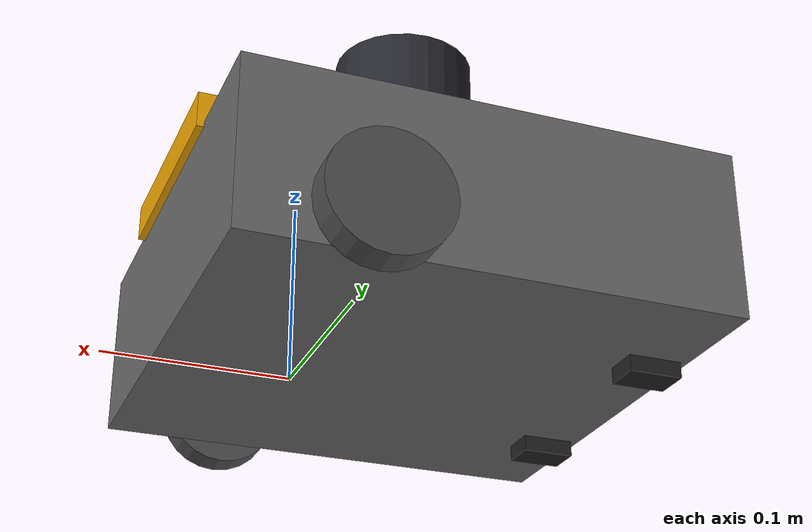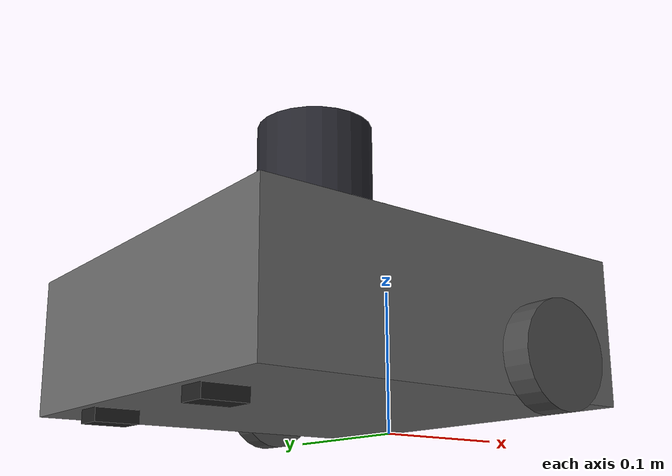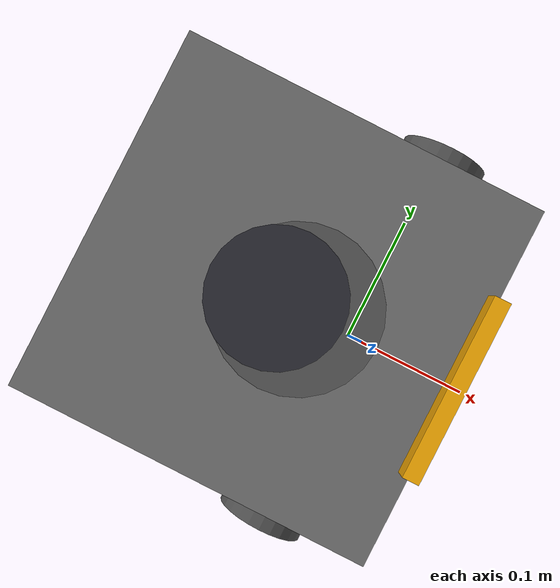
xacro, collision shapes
<?xml version="1.0"?>
<robot name="turtlebot3_ouster" xmlns:xacro="http://www.ros.org/wiki/xacro">

  <xacro:arg name="metadata_lidar0" default="metadata/os1_64_rev7.json"/>
  <xacro:arg name="hardware_revision" default="rev07"/>
  <!-- raycast (default, GPU-free) | panels (GpuRays, needs a rendering world) -->
  <xacro:arg name="ray_mode" default="raycast"/>
  <xacro:property name="ray_mode" value="$(arg ray_mode)"/>
  <!-- raycast needs only a pose anchor (non-rendering altimeter); panels needs a
       rendering anchor (camera) to bootstrap the ogre2 scene. -->
  <xacro:property name="anchor_type"
    value="${'altimeter' if ray_mode == 'raycast' else 'camera'}"/>

  <!-- TurtleBot3 waffle body (description only; namespace left empty). -->
  <xacro:include filename="$(find turtlebot3_description)/urdf/turtlebot3_waffle.urdf"/>

  <!-- Ouster mount macro. -->
  <xacro:include filename="ouster_macro.xacro"/>

  <!-- The Ouster, sat above the waffle's top plate (base_scan is at z=0.122). -->
  <xacro:ouster_sensor
    name="lidar0"
    parent="base_link"
    xyz="-0.064 0 0.16" rpy="0 0 0"
    metadata_path="$(arg metadata_lidar0)"
    hardware_revision="$(arg hardware_revision)"
    lidar_hz="10.0"
    enable_imu="true" imu_hz="100.0"
    ray_mode="${ray_mode}"
    anchor_type="${anchor_type}"/>

  <gazebo>
    <plugin filename="gz-sim-diff-drive-system"
            name="gz::sim::systems::DiffDrive">
      <left_joint>wheel_left_joint</left_joint>
      <right_joint>wheel_right_joint</right_joint>
      <wheel_separation>0.287</wheel_separation>
      <wheel_radius>0.033</wheel_radius>
      <max_linear_acceleration>1.0</max_linear_acceleration>
      <topic>cmd_vel</topic>
      <odom_topic>odom</odom_topic>
      <frame_id>odom</frame_id>
      <child_frame_id>base_footprint</child_frame_id>
      <odom_publish_frequency>30</odom_publish_frequency>
      <tf_topic>/tf</tf_topic>
    </plugin>

    <!-- Publish wheel joint angles so robot_state_publisher can spin the wheels
         in RViz (bridged to ROS /joint_states by the launch). -->
    <plugin filename="gz-sim-joint-state-publisher-system"
            name="gz::sim::systems::JointStatePublisher">
      <topic>joint_states</topic>
      <joint_name>wheel_left_joint</joint_name>
      <joint_name>wheel_right_joint</joint_name>
    </plugin>
  </gazebo>

</robot>

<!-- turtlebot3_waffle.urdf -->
<!-- |    This document was autogenerated by xacro from urdf/turtlebot3_waffle.urdf.xacro | -->
<!-- |    EDITING THIS FILE BY HAND IS NOT RECOMMENDED                                 | -->
<robot name="turtlebot3_waffle">
  <!-- Init colour -->
  <material name="black">
    <color rgba="0.0 0.0 0.0 1.0"/>
  </material>
  <material name="dark">
    <color rgba="0.3 0.3 0.3 1.0"/>
  </material>
  <material name="light_black">
    <color rgba="0.4 0.4 0.4 1.0"/>
  </material>
  <material name="blue">
    <color rgba="0.0 0.0 0.8 1.0"/>
  </material>
  <material name="green">
    <color rgba="0.0 0.8 0.0 1.0"/>
  </material>
  <material name="grey">
    <color rgba="0.5 0.5 0.5 1.0"/>
  </material>
  <material name="orange">
    <color rgba="1.0 0.4235294117647059 0.0392156862745098 1.0"/>
  </material>
  <material name="brown">
    <color rgba="0.8705882352941177 0.8117647058823529 0.7647058823529411 1.0"/>
  </material>
  <material name="red">
    <color rgba="0.8 0.0 0.0 1.0"/>
  </material>
  <material name="white">
    <color rgba="1.0 1.0 1.0 1.0"/>
  </material>
  <gazebo reference="base_link">
    <material>Gazebo/DarkGrey</material>
  </gazebo>
  <gazebo reference="wheel_left_link">
    <mu1>0.1</mu1>
    <mu2>0.1</mu2>
    <kp>500000.0</kp>
    <kd>10.0</kd>
    <minDepth>0.001</minDepth>
    <maxVel>0.1</maxVel>
    <fdir1>1 0 0</fdir1>
    <material>Gazebo/FlatBlack</material>
  </gazebo>
  <gazebo reference="wheel_right_link">
    <mu1>0.1</mu1>
    <mu2>0.1</mu2>
    <kp>500000.0</kp>
    <kd>10.0</kd>
    <minDepth>0.001</minDepth>
    <maxVel>0.1</maxVel>
    <fdir1>1 0 0</fdir1>
    <material>Gazebo/FlatBlack</material>
  </gazebo>
  <gazebo reference="caster_back_right_link">
    <mu1>0.1</mu1>
    <mu2>0.1</mu2>
    <kp>1000000.0</kp>
    <kd>100.0</kd>
    <minDepth>0.001</minDepth>
    <maxVel>1.0</maxVel>
    <material>Gazebo/FlatBlack</material>
  </gazebo>
  <gazebo reference="caster_back_left_link">
    <mu1>0.1</mu1>
    <mu2>0.1</mu2>
    <kp>1000000.0</kp>
    <kd>100.0</kd>
    <minDepth>0.001</minDepth>
    <maxVel>1.0</maxVel>
    <material>Gazebo/FlatBlack</material>
  </gazebo>
  <gazebo reference="imu_link">
    <sensor name="imu" type="imu">
      <always_on>true</always_on>
      <visualize>false</visualize>
    </sensor>
    <material>Gazebo/Grey</material>
  </gazebo>
  <gazebo>
    <plugin filename="libgazebo_ros_diff_drive.so" name="turtlebot3_waffle_controller">
      <commandTopic>cmd_vel</commandTopic>
      <odometryTopic>odom</odometryTopic>
      <odometryFrame>odom</odometryFrame>
      <odometrySource>world</odometrySource>
      <publishOdomTF>true</publishOdomTF>
      <robotBaseFrame>base_footprint</robotBaseFrame>
      <publishWheelTF>false</publishWheelTF>
      <publishTf>true</publishTf>
      <publishWheelJointState>true</publishWheelJointState>
      <legacyMode>false</legacyMode>
      <updateRate>30</updateRate>
      <leftJoint>wheel_left_joint</leftJoint>
      <rightJoint>wheel_right_joint</rightJoint>
      <wheelSeparation>0.287</wheelSeparation>
      <wheelDiameter>0.066</wheelDiameter>
      <wheelAcceleration>1</wheelAcceleration>
      <wheelTorque>10</wheelTorque>
      <rosDebugLevel>na</rosDebugLevel>
    </plugin>
  </gazebo>
  <gazebo>
    <plugin filename="libgazebo_ros_imu.so" name="imu_plugin">
      <alwaysOn>true</alwaysOn>
      <bodyName>imu_link</bodyName>
      <frameName>imu_link</frameName>
      <topicName>imu</topicName>
      <serviceName>imu_service</serviceName>
      <gaussianNoise>0.0</gaussianNoise>
      <updateRate>0</updateRate>
      <imu>
        <noise>
          <type>gaussian</type>
          <rate>
            <mean>0.0</mean>
            <stddev>2e-4</stddev>
            <bias_mean>0.0000075</bias_mean>
            <bias_stddev>0.0000008</bias_stddev>
          </rate>
          <accel>
            <mean>0.0</mean>
            <stddev>1.7e-2</stddev>
            <bias_mean>0.1</bias_mean>
            <bias_stddev>0.001</bias_stddev>
          </accel>
        </noise>
      </imu>
    </plugin>
  </gazebo>
  <gazebo reference="base_scan">
    <material>Gazebo/FlatBlack</material>
    <sensor name="lds_lfcd_sensor" type="ray">
      <pose>0 0 0 0 0 0</pose>
      <visualize>false</visualize>
      <update_rate>5</update_rate>
      <ray>
        <scan>
          <horizontal>
            <samples>360</samples>
            <resolution>1</resolution>
            <min_angle>0.0</min_angle>
            <max_angle>6.28319</max_angle>
          </horizontal>
        </scan>
        <range>
          <min>0.120</min>
          <max>3.5</max>
          <resolution>0.015</resolution>
        </range>
        <noise>
          <type>gaussian</type>
          <mean>0.0</mean>
          <stddev>0.01</stddev>
        </noise>
      </ray>
      <plugin filename="libgazebo_ros_laser.so" name="gazebo_ros_lds_lfcd_controller">
        <topicName>scan</topicName>
        <frameName>base_scan</frameName>
      </plugin>
    </sensor>
  </gazebo>
  <gazebo reference="camera_rgb_frame">
    <sensor name="realsense_R200" type="depth">
      <always_on>true</always_on>
      <visualize>false</visualize>
      <camera>
        <horizontal_fov>1.3439</horizontal_fov>
        <image>
          <width>1920</width>
          <height>1080</height>
          <format>R8G8B8</format>
        </image>
        <depth_camera/>
        <clip>
          <near>0.03</near>
          <far>100</far>
        </clip>
      </camera>
      <plugin filename="libgazebo_ros_openni_kinect.so" name="camera_controller">
        <baseline>0.2</baseline>
        <alwaysOn>true</alwaysOn>
        <updateRate>30.0</updateRate>
        <cameraName>camera</cameraName>
        <frameName>camera_rgb_optical_frame</frameName>
        <imageTopicName>rgb/image_raw</imageTopicName>
        <depthImageTopicName>depth/image_raw</depthImageTopicName>
        <pointCloudTopicName>depth/points</pointCloudTopicName>
        <cameraInfoTopicName>rgb/camera_info</cameraInfoTopicName>
        <depthImageCameraInfoTopicName>depth/camera_info</depthImageCameraInfoTopicName>
        <pointCloudCutoff>0.4</pointCloudCutoff>
        <hackBaseline>0.07</hackBaseline>
        <distortionK1>0.0</distortionK1>
        <distortionK2>0.0</distortionK2>
        <distortionK3>0.0</distortionK3>
        <distortionT1>0.0</distortionT1>
        <distortionT2>0.0</distortionT2>
        <CxPrime>0.0</CxPrime>
        <Cx>0.0</Cx>
        <Cy>0.0</Cy>
        <focalLength>0</focalLength>
        <hackBaseline>0</hackBaseline>
      </plugin>
    </sensor>
  </gazebo>
  <link name="base_footprint"/>
  <joint name="base_joint" type="fixed">
    <parent link="base_footprint"/>
    <child link="base_link"/>
    <origin rpy="0 0 0" xyz="0 0 0.010"/>
  </joint>
  <link name="base_link">
    <visual>
      <origin rpy="0 0 0" xyz="-0.064 0 0.0"/>
      <geometry>
        <mesh filename="package://turtlebot3_description/meshes/bases/waffle_base.stl" scale="0.001 0.001 0.001"/>
      </geometry>
      <material name="light_black"/>
    </visual>
    <collision>
      <origin rpy="0 0 0" xyz="-0.064 0 0.047"/>
      <geometry>
        <box size="0.266 0.266 0.094"/>
      </geometry>
    </collision>
    <inertial>
      <origin rpy="0 0 0" xyz="0 0 0"/>
      <mass value="1.3729096e+00"/>
      <inertia ixx="8.7002718e-03" ixy="-4.7576583e-05" ixz="1.1160499e-04" iyy="8.6195418e-03" iyz="-3.5422299e-06" izz="1.4612727e-02"/>
    </inertial>
  </link>
  <joint name="wheel_left_joint" type="continuous">
    <parent link="base_link"/>
    <child link="wheel_left_link"/>
    <origin rpy="-1.57 0 0" xyz="0.0 0.144 0.023"/>
    <axis xyz="0 0 1"/>
  </joint>
  <link name="wheel_left_link">
    <visual>
      <origin rpy="1.57 0 0" xyz="0 0 0"/>
      <geometry>
        <mesh filename="package://turtlebot3_description/meshes/wheels/left_tire.stl" scale="0.001 0.001 0.001"/>
      </geometry>
      <material name="dark"/>
    </visual>
    <collision>
      <origin rpy="0 0 0" xyz="0 0 0"/>
      <geometry>
        <cylinder length="0.018" radius="0.033"/>
      </geometry>
    </collision>
    <inertial>
      <origin xyz="0 0 0"/>
      <mass value="2.8498940e-02"/>
      <inertia ixx="1.1175580e-05" ixy="-4.2369783e-11" ixz="-5.9381719e-09" iyy="1.1192413e-05" iyz="-1.4400107e-11" izz="2.0712558e-05"/>
    </inertial>
  </link>
  <joint name="wheel_right_joint" type="continuous">
    <parent link="base_link"/>
    <child link="wheel_right_link"/>
    <origin rpy="-1.57 0 0" xyz="0.0 -0.144 0.023"/>
    <axis xyz="0 0 1"/>
  </joint>
  <link name="wheel_right_link">
    <visual>
      <origin rpy="1.57 0 0" xyz="0 0 0"/>
      <geometry>
        <mesh filename="package://turtlebot3_description/meshes/wheels/right_tire.stl" scale="0.001 0.001 0.001"/>
      </geometry>
      <material name="dark"/>
    </visual>
    <collision>
      <origin rpy="0 0 0" xyz="0 0 0"/>
      <geometry>
        <cylinder length="0.018" radius="0.033"/>
      </geometry>
    </collision>
    <inertial>
      <origin xyz="0 0 0"/>
      <mass value="2.8498940e-02"/>
      <inertia ixx="1.1175580e-05" ixy="-4.2369783e-11" ixz="-5.9381719e-09" iyy="1.1192413e-05" iyz="-1.4400107e-11" izz="2.0712558e-05"/>
    </inertial>
  </link>
  <joint name="caster_back_right_joint" type="fixed">
    <parent link="base_link"/>
    <child link="caster_back_right_link"/>
    <origin rpy="-1.57 0 0" xyz="-0.177 -0.064 -0.004"/>
  </joint>
  <link name="caster_back_right_link">
    <collision>
      <origin rpy="0 0 0" xyz="0 0.001 0"/>
      <geometry>
        <box size="0.030 0.009 0.020"/>
      </geometry>
    </collision>
    <inertial>
      <origin xyz="0 0 0"/>
      <mass value="0.005"/>
      <inertia ixx="0.001" ixy="0.0" ixz="0.0" iyy="0.001" iyz="0.0" izz="0.001"/>
    </inertial>
  </link>
  <joint name="caster_back_left_joint" type="fixed">
    <parent link="base_link"/>
    <child link="caster_back_left_link"/>
    <origin rpy="-1.57 0 0" xyz="-0.177 0.064 -0.004"/>
  </joint>
  <link name="caster_back_left_link">
    <collision>
      <origin rpy="0 0 0" xyz="0 0.001 0"/>
      <geometry>
        <box size="0.030 0.009 0.020"/>
      </geometry>
    </collision>
    <inertial>
      <origin xyz="0 0 0"/>
      <mass value="0.005"/>
      <inertia ixx="0.001" ixy="0.0" ixz="0.0" iyy="0.001" iyz="0.0" izz="0.001"/>
    </inertial>
  </link>
  <joint name="imu_joint" type="fixed">
    <parent link="base_link"/>
    <child link="imu_link"/>
    <origin rpy="0 0 0" xyz="0.0 0 0.068"/>
  </joint>
  <link name="imu_link"/>
  <joint name="scan_joint" type="fixed">
    <parent link="base_link"/>
    <child link="base_scan"/>
    <origin rpy="0 0 0" xyz="-0.064 0 0.122"/>
  </joint>
  <link name="base_scan">
    <visual>
      <origin rpy="0 0 0" xyz="0 0 0"/>
      <geometry>
        <mesh filename="package://turtlebot3_description/meshes/sensors/lds.stl" scale="0.001 0.001 0.001"/>
      </geometry>
      <material name="dark"/>
    </visual>
    <collision>
      <origin rpy="0 0 0" xyz="0.015 0 -0.0065"/>
      <geometry>
        <cylinder length="0.0315" radius="0.055"/>
      </geometry>
    </collision>
    <inertial>
      <mass value="0.114"/>
      <origin xyz="0 0 0"/>
      <inertia ixx="0.001" ixy="0.0" ixz="0.0" iyy="0.001" iyz="0.0" izz="0.001"/>
    </inertial>
  </link>
  <joint name="camera_joint" type="fixed">
    <origin rpy="0 0 0" xyz="0.064 -0.065 0.094"/>
    <parent link="base_link"/>
    <child link="camera_link"/>
  </joint>
  <link name="camera_link">
    <visual>
      <origin rpy="1.57 0 1.57" xyz="0 0 0"/>
      <geometry>
        <mesh filename="package://turtlebot3_description/meshes/sensors/r200.dae"/>
      </geometry>
    </visual>
    <collision>
      <origin rpy="0 0 0" xyz="0.003 0.065 0.007"/>
      <geometry>
        <box size="0.012 0.132 0.020"/>
      </geometry>
    </collision>
    <!-- This inertial field needs doesn't contain reliable data!! -->
  </link>
  <joint name="camera_rgb_joint" type="fixed">
    <origin rpy="0 0 0" xyz="0.005 0.018 0.013"/>
    <parent link="camera_link"/>
    <child link="camera_rgb_frame"/>
  </joint>
  <link name="camera_rgb_frame"/>
  <joint name="camera_rgb_optical_joint" type="fixed">
    <origin rpy="-1.57 0 -1.57" xyz="0 0 0"/>
    <parent link="camera_rgb_frame"/>
    <child link="camera_rgb_optical_frame"/>
  </joint>
  <link name="camera_rgb_optical_frame"/>
  <joint name="camera_depth_joint" type="fixed">
    <origin rpy="0 0 0" xyz="0.005 0.027999999999999997 0.013"/>
    <parent link="camera_link"/>
    <child link="camera_depth_frame"/>
  </joint>
  <link name="camera_depth_frame"/>
  <joint name="camera_depth_optical_joint" type="fixed">
    <origin rpy="-1.57 0 -1.57" xyz="0 0 0"/>
    <parent link="camera_depth_frame"/>
    <child link="camera_depth_optical_frame"/>
  </joint>
  <link name="camera_depth_optical_frame"/>
</robot>

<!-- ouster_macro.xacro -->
<robot xmlns:xacro="http://www.ros.org/wiki/xacro">

  <xacro:include filename="ouster_smoke_obscurants.xacro"/>

  <xacro:macro name="ouster_sensor"
    params="name parent metadata_path
            hardware_revision:=rev07
            topic_prefix:=''
            xyz:='0 0 0' rpy:='0 0 0'
            lidar_hz:=10.0
            enable_imu:=false imu_hz:=100.0
            ray_mode:=raycast
            anchor_type:=altimeter
            obscurant_profile:=''">

    <xacro:property name="ns"
      value="${'/sensor/lidar/' + name if topic_prefix == '' else topic_prefix}"/>

    <link name="${name}/lidar_frame">
      <inertial>
        <mass value="0.33"/>
        <origin xyz="0 0 0"/>
        <inertia ixx="2.6e-4" ixy="0" ixz="0" iyy="2.6e-4" iyz="0" izz="2.6e-4"/>
      </inertial>
      <visual>
        <origin xyz="0 0 0"/>
        <geometry><cylinder radius="0.04" length="0.074"/></geometry>
        <material name="ouster_dark"><color rgba="0.15 0.15 0.18 1"/></material>
      </visual>
      <collision>
        <geometry><cylinder radius="0.04" length="0.074"/></geometry>
      </collision>
    </link>

    <joint name="${name}_mount_joint" type="fixed">
      <parent link="${parent}"/>
      <child link="${name}/lidar_frame"/>
      <origin xyz="${xyz}" rpy="${rpy}"/>
    </joint>

    <gazebo reference="${name}/lidar_frame">
      <sensor name="${name}" type="${anchor_type}">
        <pose>0 0 0 0 0 0</pose>
        <always_on>1</always_on>
        <update_rate>${lidar_hz}</update_rate>
        <visualize>false</visualize>
        <xacro:if value="${anchor_type == 'altimeter'}">
          <altimeter/>
        </xacro:if>
        <!-- Default: a tiny camera purely to start the render loop (its image
             is unused / not bridged). Not a lidar → no second scan. -->
        <xacro:if value="${anchor_type == 'camera'}">
          <topic>${ns}/render_anchor</topic>
          <camera>
            <horizontal_fov>1.0</horizontal_fov>
            <image><width>16</width><height>16</height></image>
            <clip><near>0.1</near><far>100.0</far></clip>
          </camera>
        </xacro:if>
        <xacro:if value="${anchor_type == 'gpu_lidar'}">
          <topic>${ns}/gz_native_scan</topic>
          <lidar>
            <scan>
              <horizontal><samples>512</samples><resolution>1</resolution>
                <min_angle>-3.14159</min_angle><max_angle>3.14159</max_angle></horizontal>
              <vertical><samples>64</samples><resolution>1</resolution>
                <min_angle>-0.2897</min_angle><max_angle>0.2897</max_angle></vertical>
            </scan>
            <range><min>0.5</min><max>120.0</max><resolution>0.001</resolution></range>
          </lidar>
        </xacro:if>
      </sensor>
    </gazebo>

    <!-- ── Optional IMU frame + real gz imu sensor ── -->
    <xacro:if value="${enable_imu}">
      <link name="${name}/imu_frame">
        <inertial>
          <mass value="0.01"/>
          <origin xyz="0 0 0"/>
          <inertia ixx="1e-6" ixy="0" ixz="0" iyy="1e-6" iyz="0" izz="1e-6"/>
        </inertial>
      </link>
      <joint name="${name}_imu_joint" type="fixed">
        <parent link="${name}/lidar_frame"/>
        <child link="${name}/imu_frame"/>
        <origin xyz="0 0 0" rpy="0 0 0"/>
      </joint>
      <gazebo reference="${name}/imu_frame">
        <sensor name="${name}_imu" type="imu">
          <pose>0 0 0 0 0 0</pose>
          <always_on>1</always_on>
          <update_rate>${imu_hz}</update_rate>
          <imu/>
        </sensor>
      </gazebo>
    </xacro:if>

    <!-- ── Model-level system plugin (one per sensor) ── -->
    <gazebo>
      <plugin filename="libgz_sensors_ouster.so"
              name="gz_gpu_ouster_lidar::GzGpuOusterLidarSystem">
        <metadata_path>${metadata_path}</metadata_path>
        <!-- auto | gen1 | revC | revD | rev05 | rev06 | rev06.2 |
             rev07 | rev07.1 | rev08. Explicit is preferred when metadata
             carries a synthetic or pre-standard product part number. -->
        <hardware_revision>${hardware_revision}</hardware_revision>
        <sensor_name>${ns}</sensor_name>
        <lidar_hz>${lidar_hz}</lidar_hz>
        <!-- panels (GPU render rig) | raycast (CPU per-beam, no rendering). -->
        <ray_mode>${ray_mode}</ray_mode>
        <xacro:if value="${obscurant_profile == 'smoke_demo'}">
          <xacro:ouster_smoke_obscurants/>
        </xacro:if>
        <xacro:if value="${enable_imu}">
          <imu_name>auto</imu_name>
          <imu_hz>${imu_hz}</imu_hz>
        </xacro:if>
      </plugin>
    </gazebo>

  </xacro:macro>
</robot>
